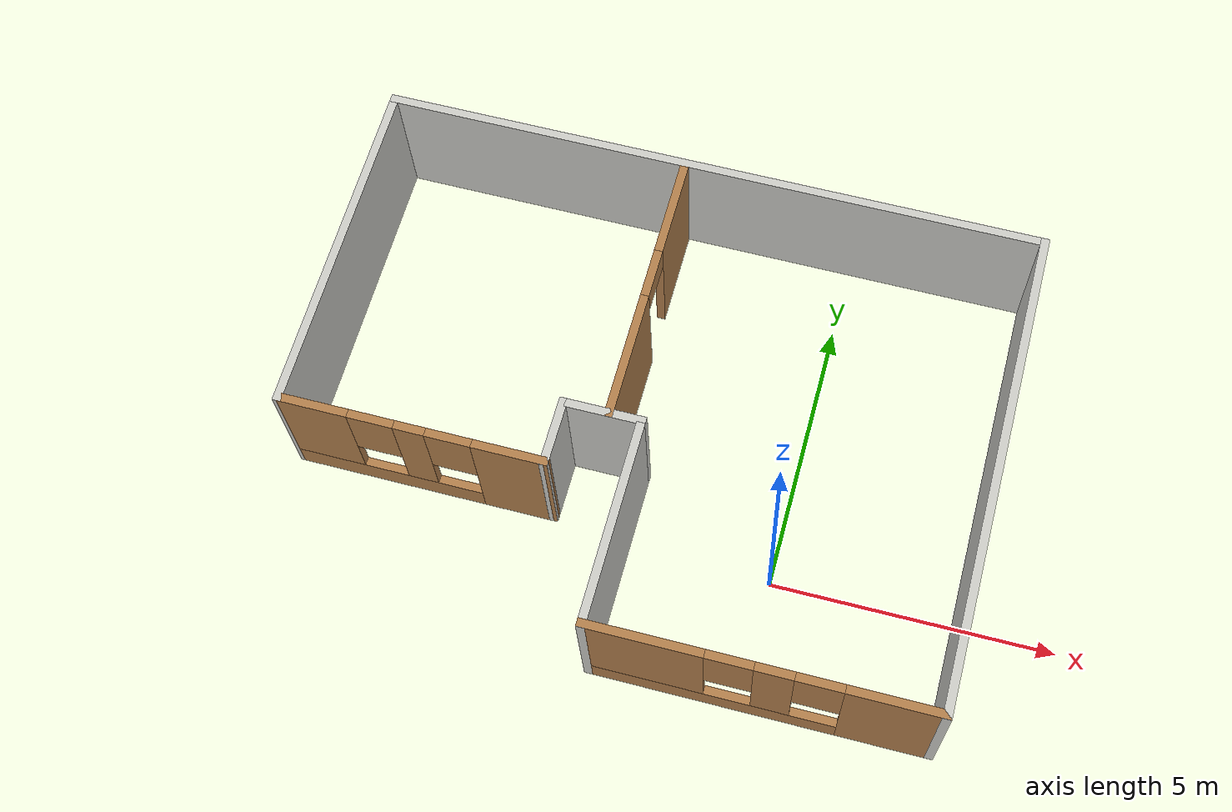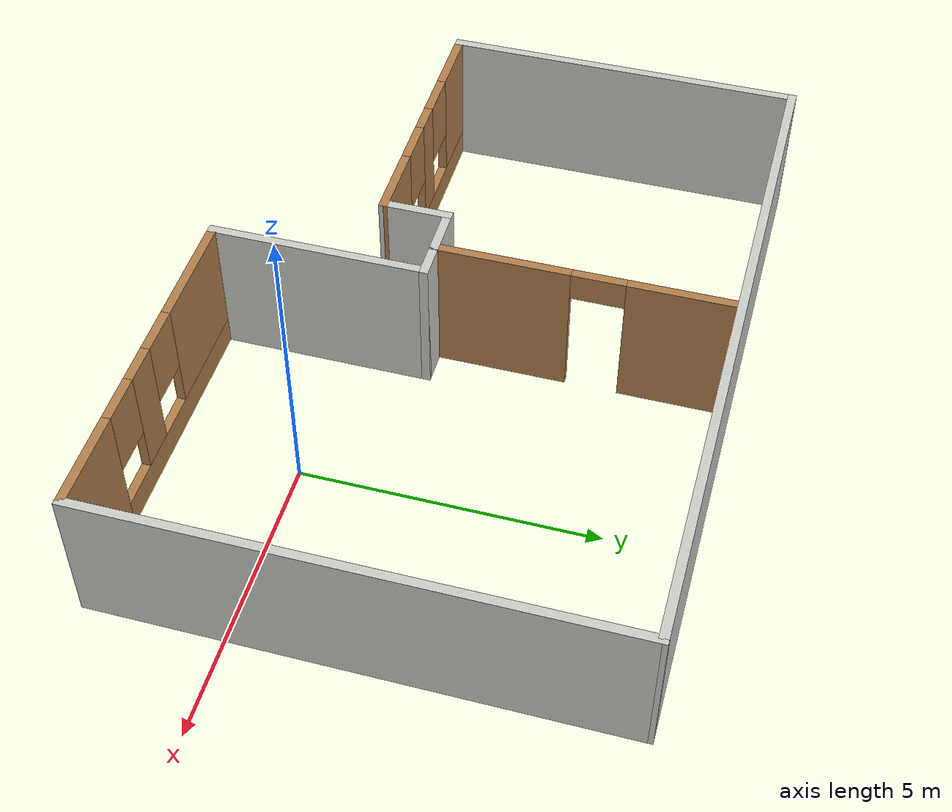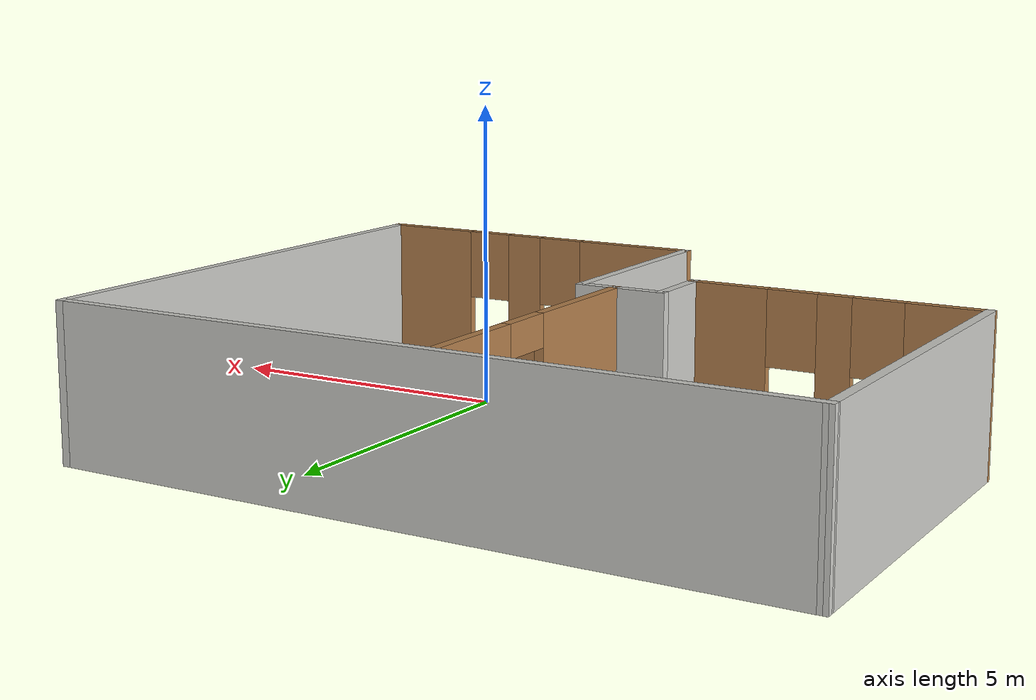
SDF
<?xml version='1.0'?>
<sdf version='1.6'>
  <model name='Building'>
    <pose frame=''>-2.63523 2.0825 0 0 -0 0</pose>
    <link name='Wall_26'>
      <collision name='Wall_26_Collision'>
        <geometry>
          <box>
            <size>11.9548 0.15 2.5</size>
          </box>
        </geometry>
        <pose frame=''>0 0 1.25 0 -0 0</pose>
      </collision>
      <visual name='Wall_26_Visual'>
        <pose frame=''>0 0 1.25 0 -0 0</pose>
        <geometry>
          <box>
            <size>11.9548 0.15 2.5</size>
          </box>
        </geometry>
        <material>
          <script>
            <uri>file://media/materials/scripts/gazebo.material</uri>
            <name>Gazebo/CeilingTiled</name>
          </script>
          <ambient>1 1 1 1</ambient>
        </material>
        <meta>
          <layer>0</layer>
        </meta>
      </visual>
      <pose frame=''>-0.000176 4.29996 0 0 0 -0.000586</pose>
    </link>
    <link name='Wall_27'>
      <collision name='Wall_27_Collision'>
        <geometry>
          <box>
            <size>8.75 0.15 2.5</size>
          </box>
        </geometry>
        <pose frame=''>0 0 1.25 0 -0 0</pose>
      </collision>
      <visual name='Wall_27_Visual'>
        <pose frame=''>0 0 1.25 0 -0 0</pose>
        <geometry>
          <box>
            <size>8.75 0.15 2.5</size>
          </box>
        </geometry>
        <material>
          <script>
            <uri>file://media/materials/scripts/gazebo.material</uri>
            <name>Gazebo/CeilingTiled</name>
          </script>
          <ambient>1 1 1 1</ambient>
        </material>
        <meta>
          <layer>0</layer>
        </meta>
      </visual>
      <pose frame=''>5.90246 -0.003458 0 0 0 -1.57074</pose>
    </link>
    <link name='Wall_28'>
      <pose frame=''>2.97769 -4.30342 0 0 -0 3.14159</pose>
      <visual name='Wall_28_Visual_0'>
        <pose frame=''>-2.16132 0 1.25 0 -0 0</pose>
        <geometry>
          <box>
            <size>1.67735 0.15 2.5</size>
          </box>
        </geometry>
        <material>
          <script>
            <uri>file://media/materials/scripts/gazebo.material</uri>
            <name>Gazebo/Wood</name>
          </script>
          <ambient>1 1 1 1</ambient>
        </material>
        <meta>
          <layer>0</layer>
        </meta>
      </visual>
      <collision name='Wall_28_Collision_0'>
        <geometry>
          <box>
            <size>1.67735 0.15 2.5</size>
          </box>
        </geometry>
        <pose frame=''>-2.16132 0 1.25 0 -0 0</pose>
      </collision>
      <visual name='Wall_28_Visual_1'>
        <pose frame=''>0.838676 0 0.25 0 -0 0</pose>
        <geometry>
          <box>
            <size>4.32265 0.15 0.5</size>
          </box>
        </geometry>
        <material>
          <script>
            <uri>file://media/materials/scripts/gazebo.material</uri>
            <name>Gazebo/Wood</name>
          </script>
          <ambient>1 1 1 1</ambient>
        </material>
        <meta>
          <layer>0</layer>
        </meta>
      </visual>
      <collision name='Wall_28_Collision_1'>
        <geometry>
          <box>
            <size>4.32265 0.15 0.5</size>
          </box>
        </geometry>
        <pose frame=''>0.838676 0 0.25 0 -0 0</pose>
      </collision>
      <visual name='Wall_28_Visual_2'>
        <pose frame=''>-0.194936 0 1.5 0 -0 0</pose>
        <geometry>
          <box>
            <size>0.655424 0.15 2</size>
          </box>
        </geometry>
        <material>
          <script>
            <uri>file://media/materials/scripts/gazebo.material</uri>
            <name>Gazebo/Wood</name>
          </script>
          <ambient>1 1 1 1</ambient>
        </material>
        <meta>
          <layer>0</layer>
        </meta>
      </visual>
      <collision name='Wall_28_Collision_2'>
        <geometry>
          <box>
            <size>0.655424 0.15 2</size>
          </box>
        </geometry>
        <pose frame=''>-0.194936 0 1.5 0 -0 0</pose>
      </collision>
      <visual name='Wall_28_Visual_3'>
        <pose frame=''>1.96639 0 1.5 0 -0 0</pose>
        <geometry>
          <box>
            <size>2.06722 0.15 2</size>
          </box>
        </geometry>
        <material>
          <script>
            <uri>file://media/materials/scripts/gazebo.material</uri>
            <name>Gazebo/Wood</name>
          </script>
          <ambient>1 1 1 1</ambient>
        </material>
        <meta>
          <layer>0</layer>
        </meta>
      </visual>
      <collision name='Wall_28_Collision_3'>
        <geometry>
          <box>
            <size>2.06722 0.15 2</size>
          </box>
        </geometry>
        <pose frame=''>1.96639 0 1.5 0 -0 0</pose>
      </collision>
      <visual name='Wall_28_Visual_4'>
        <pose frame=''>-0.922648 0 1.9 0 -0 0</pose>
        <geometry>
          <box>
            <size>0.8 0.15 1.2</size>
          </box>
        </geometry>
        <material>
          <script>
            <uri>file://media/materials/scripts/gazebo.material</uri>
            <name>Gazebo/Wood</name>
          </script>
          <ambient>1 1 1 1</ambient>
        </material>
        <meta>
          <layer>0</layer>
        </meta>
      </visual>
      <collision name='Wall_28_Collision_4'>
        <geometry>
          <box>
            <size>0.8 0.15 1.2</size>
          </box>
        </geometry>
        <pose frame=''>-0.922648 0 1.9 0 -0 0</pose>
      </collision>
      <visual name='Wall_28_Visual_5'>
        <pose frame=''>0.532776 0 1.9 0 -0 0</pose>
        <geometry>
          <box>
            <size>0.8 0.15 1.2</size>
          </box>
        </geometry>
        <material>
          <script>
            <uri>file://media/materials/scripts/gazebo.material</uri>
            <name>Gazebo/Wood</name>
          </script>
          <ambient>1 1 1 1</ambient>
        </material>
        <meta>
          <layer>0</layer>
        </meta>
      </visual>
      <collision name='Wall_28_Collision_5'>
        <geometry>
          <box>
            <size>0.8 0.15 1.2</size>
          </box>
        </geometry>
        <pose frame=''>0.532776 0 1.9 0 -0 0</pose>
      </collision>
    </link>
    <link name='Wall_29'>
      <collision name='Wall_29_Collision'>
        <geometry>
          <box>
            <size>3.75 0.15 2.5</size>
          </box>
        </geometry>
        <pose frame=''>0 0 1.25 0 -0 0</pose>
      </collision>
      <visual name='Wall_29_Visual'>
        <pose frame=''>0 0 1.25 0 -0 0</pose>
        <geometry>
          <box>
            <size>3.75 0.15 2.5</size>
          </box>
        </geometry>
        <material>
          <script>
            <uri>file://media/materials/scripts/gazebo.material</uri>
            <name>Gazebo/CeilingTiled</name>
          </script>
          <ambient>1 1 1 1</ambient>
        </material>
        <meta>
          <layer>0</layer>
        </meta>
      </visual>
      <pose frame=''>0.052686 -2.50342 0 0 -0 1.5708</pose>
    </link>
    <link name='Wall_30'>
      <collision name='Wall_30_Collision'>
        <geometry>
          <box>
            <size>1.5 0.15 2.5</size>
          </box>
        </geometry>
        <pose frame=''>0 0 1.25 0 -0 0</pose>
      </collision>
      <visual name='Wall_30_Visual'>
        <pose frame=''>0 0 1.25 0 -0 0</pose>
        <geometry>
          <box>
            <size>1.5 0.15 2.5</size>
          </box>
        </geometry>
        <material>
          <script>
            <uri>file://media/materials/scripts/gazebo.material</uri>
            <name>Gazebo/CeilingTiled</name>
          </script>
          <ambient>1 1 1 1</ambient>
        </material>
        <meta>
          <layer>0</layer>
        </meta>
      </visual>
      <pose frame=''>-0.622313 -0.703418 0 0 -0 3.14159</pose>
    </link>
    <link name='Wall_31'>
      <collision name='Wall_31_Collision'>
        <geometry>
          <box>
            <size>1.25 0.15 2.5</size>
          </box>
        </geometry>
        <pose frame=''>0 0 1.25 0 -0 0</pose>
      </collision>
      <visual name='Wall_31_Visual'>
        <pose frame=''>0 0 1.25 0 -0 0</pose>
        <geometry>
          <box>
            <size>1.25 0.15 2.5</size>
          </box>
        </geometry>
        <material>
          <script>
            <uri>file://media/materials/scripts/gazebo.material</uri>
            <name>Gazebo/CeilingTiled</name>
          </script>
          <ambient>1 1 1 1</ambient>
        </material>
        <meta>
          <layer>0</layer>
        </meta>
      </visual>
      <pose frame=''>-1.29731 -1.25342 0 0 0 -1.5708</pose>
    </link>
    <link name='Wall_32'>
      <pose frame=''>-3.59995 -1.8 0 0 -0 3.14011</pose>
      <visual name='Wall_32_Visual_0'>
        <pose frame=''>-1.71646 0 1.25 0 -0 0</pose>
        <geometry>
          <box>
            <size>1.32235 0.15 2.5</size>
          </box>
        </geometry>
        <material>
          <script>
            <uri>file://media/materials/scripts/gazebo.material</uri>
            <name>Gazebo/Wood</name>
          </script>
          <ambient>1 1 1 1</ambient>
        </material>
        <meta>
          <layer>0</layer>
        </meta>
      </visual>
      <collision name='Wall_32_Collision_0'>
        <geometry>
          <box>
            <size>1.32235 0.15 2.5</size>
          </box>
        </geometry>
        <pose frame=''>-1.71646 0 1.25 0 -0 0</pose>
      </collision>
      <visual name='Wall_32_Visual_1'>
        <pose frame=''>0.661177 0 0.25 0 -0 0</pose>
        <geometry>
          <box>
            <size>3.43291 0.15 0.5</size>
          </box>
        </geometry>
        <material>
          <script>
            <uri>file://media/materials/scripts/gazebo.material</uri>
            <name>Gazebo/Wood</name>
          </script>
          <ambient>1 1 1 1</ambient>
        </material>
        <meta>
          <layer>0</layer>
        </meta>
      </visual>
      <collision name='Wall_32_Collision_1'>
        <geometry>
          <box>
            <size>3.43291 0.15 0.5</size>
          </box>
        </geometry>
        <pose frame=''>0.661177 0 0.25 0 -0 0</pose>
      </collision>
      <visual name='Wall_32_Visual_2'>
        <pose frame=''>0.015645 0 1.5 0 -0 0</pose>
        <geometry>
          <box>
            <size>0.541852 0.15 2</size>
          </box>
        </geometry>
        <material>
          <script>
            <uri>file://media/materials/scripts/gazebo.material</uri>
            <name>Gazebo/Wood</name>
          </script>
          <ambient>1 1 1 1</ambient>
        </material>
        <meta>
          <layer>0</layer>
        </meta>
      </visual>
      <collision name='Wall_32_Collision_2'>
        <geometry>
          <box>
            <size>0.541852 0.15 2</size>
          </box>
        </geometry>
        <pose frame=''>0.015645 0 1.5 0 -0 0</pose>
      </collision>
      <visual name='Wall_32_Visual_3'>
        <pose frame=''>1.7321 0 1.5 0 -0 0</pose>
        <geometry>
          <box>
            <size>1.29106 0.15 2</size>
          </box>
        </geometry>
        <material>
          <script>
            <uri>file://media/materials/scripts/gazebo.material</uri>
            <name>Gazebo/Wood</name>
          </script>
          <ambient>1 1 1 1</ambient>
        </material>
        <meta>
          <layer>0</layer>
        </meta>
      </visual>
      <collision name='Wall_32_Collision_3'>
        <geometry>
          <box>
            <size>1.29106 0.15 2</size>
          </box>
        </geometry>
        <pose frame=''>1.7321 0 1.5 0 -0 0</pose>
      </collision>
      <visual name='Wall_32_Visual_4'>
        <pose frame=''>-0.655281 0 1.9 0 -0 0</pose>
        <geometry>
          <box>
            <size>0.8 0.15 1.2</size>
          </box>
        </geometry>
        <material>
          <script>
            <uri>file://media/materials/scripts/gazebo.material</uri>
            <name>Gazebo/Wood</name>
          </script>
          <ambient>1 1 1 1</ambient>
        </material>
        <meta>
          <layer>0</layer>
        </meta>
      </visual>
      <collision name='Wall_32_Collision_4'>
        <geometry>
          <box>
            <size>0.8 0.15 1.2</size>
          </box>
        </geometry>
        <pose frame=''>-0.655281 0 1.9 0 -0 0</pose>
      </collision>
      <visual name='Wall_32_Visual_5'>
        <pose frame=''>0.686571 0 1.9 0 -0 0</pose>
        <geometry>
          <box>
            <size>0.8 0.15 1.2</size>
          </box>
        </geometry>
        <material>
          <script>
            <uri>file://media/materials/scripts/gazebo.material</uri>
            <name>Gazebo/Wood</name>
          </script>
          <ambient>1 1 1 1</ambient>
        </material>
        <meta>
          <layer>0</layer>
        </meta>
      </visual>
      <collision name='Wall_32_Collision_5'>
        <geometry>
          <box>
            <size>0.8 0.15 1.2</size>
          </box>
        </geometry>
        <pose frame=''>0.686571 0 1.9 0 -0 0</pose>
      </collision>
    </link>
    <link name='Wall_33'>
      <collision name='Wall_33_Collision'>
        <geometry>
          <box>
            <size>6.25 0.15 2.5</size>
          </box>
        </geometry>
        <pose frame=''>0 0 1.25 0 -0 0</pose>
      </collision>
      <visual name='Wall_33_Visual'>
        <pose frame=''>0 0 1.25 0 -0 0</pose>
        <geometry>
          <box>
            <size>6.25 0.15 2.5</size>
          </box>
        </geometry>
        <material>
          <script>
            <uri>file://media/materials/scripts/gazebo.material</uri>
            <name>Gazebo/CeilingTiled</name>
          </script>
          <ambient>1 1 1 1</ambient>
        </material>
        <meta>
          <layer>0</layer>
        </meta>
      </visual>
      <pose frame=''>-5.90258 1.25342 0 0 -0 1.5708</pose>
    </link>
    <link name='Wall_35'>
      <pose frame=''>-0.511658 1.72502 0 0 0 -1.5708</pose>
      <visual name='Wall_35_Visual_0'>
        <pose frame=''>-1.62043 0 1.25 0 -0 0</pose>
        <geometry>
          <box>
            <size>1.75914 0.15 2.5</size>
          </box>
        </geometry>
        <material>
          <script>
            <uri>file://media/materials/scripts/gazebo.material</uri>
            <name>Gazebo/Wood</name>
          </script>
          <ambient>1 1 1 1</ambient>
        </material>
        <meta>
          <layer>0</layer>
        </meta>
      </visual>
      <collision name='Wall_35_Collision_0'>
        <geometry>
          <box>
            <size>1.75914 0.15 2.5</size>
          </box>
        </geometry>
        <pose frame=''>-1.62043 0 1.25 0 -0 0</pose>
      </collision>
      <visual name='Wall_35_Visual_1'>
        <pose frame=''>1.32957 0 1.25 0 -0 0</pose>
        <geometry>
          <box>
            <size>2.34086 0.15 2.5</size>
          </box>
        </geometry>
        <material>
          <script>
            <uri>file://media/materials/scripts/gazebo.material</uri>
            <name>Gazebo/Wood</name>
          </script>
          <ambient>1 1 1 1</ambient>
        </material>
        <meta>
          <layer>0</layer>
        </meta>
      </visual>
      <collision name='Wall_35_Collision_1'>
        <geometry>
          <box>
            <size>2.34086 0.15 2.5</size>
          </box>
        </geometry>
        <pose frame=''>1.32957 0 1.25 0 -0 0</pose>
      </collision>
      <visual name='Wall_35_Visual_2'>
        <pose frame=''>-0.290864 0 2.25 0 -0 0</pose>
        <geometry>
          <box>
            <size>0.9 0.15 0.5</size>
          </box>
        </geometry>
        <material>
          <script>
            <uri>file://media/materials/scripts/gazebo.material</uri>
            <name>Gazebo/Wood</name>
          </script>
          <ambient>1 1 1 1</ambient>
        </material>
        <meta>
          <layer>0</layer>
        </meta>
      </visual>
      <collision name='Wall_35_Collision_2'>
        <geometry>
          <box>
            <size>0.9 0.15 0.5</size>
          </box>
        </geometry>
        <pose frame=''>-0.290864 0 2.25 0 -0 0</pose>
      </collision>
    </link>
    <static>1</static>
  </model>
</sdf>
